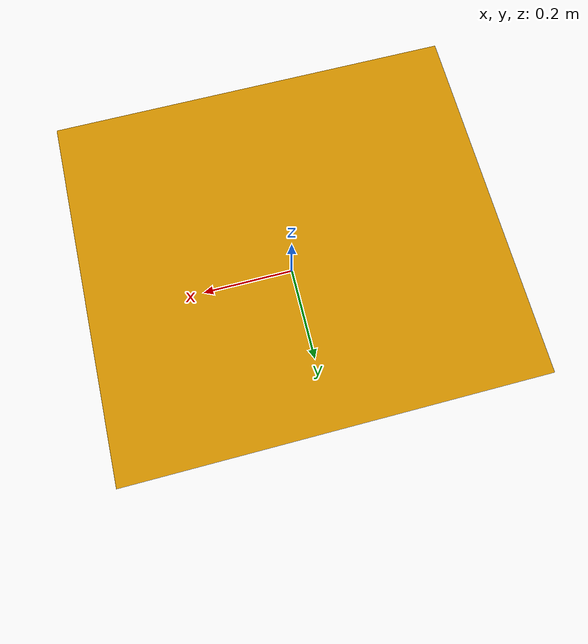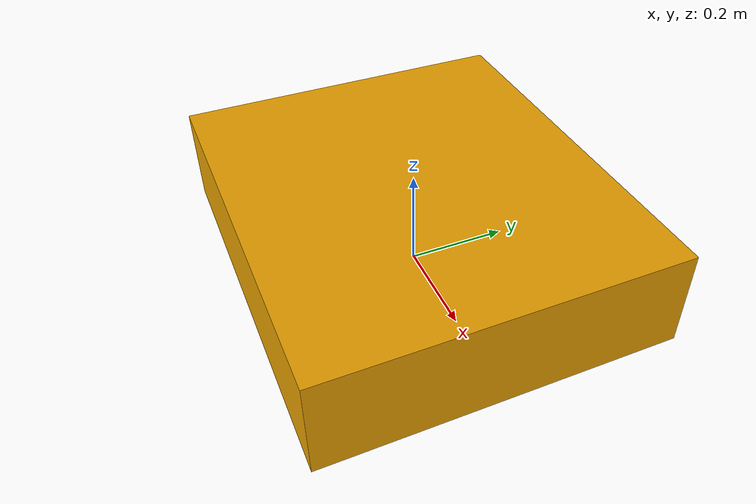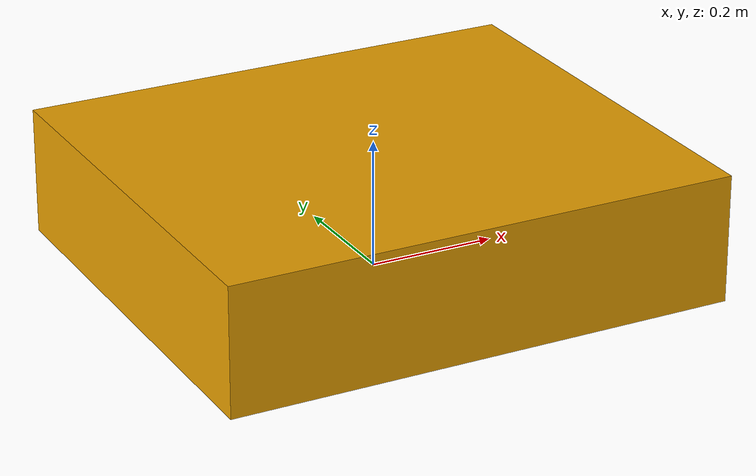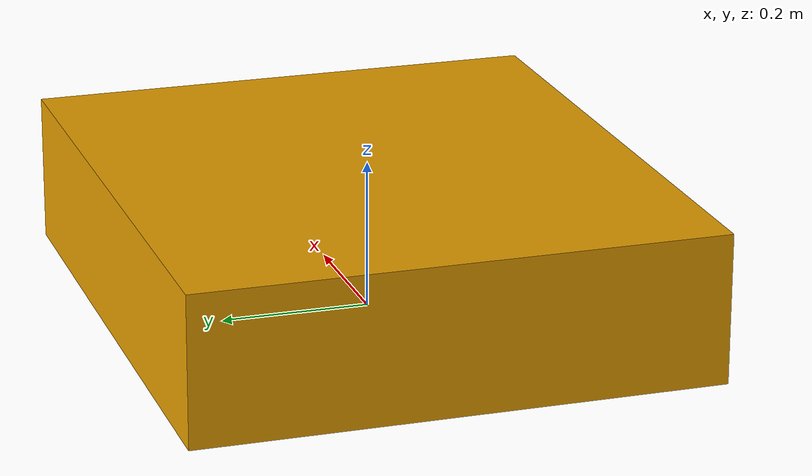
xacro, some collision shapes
<?xml version="1.0"?>
<robot name="rrl_tank" xmlns:xacro="http://www.ros.org/wiki/xacro">

  <material name="blue">
    <color rgba="0 0 0.8 1"/>
  </material>
  <material name="black">
    <color rgba="0 0 0 1"/>
  </material>
  <material name="white">
    <color rgba="1 1 1 1"/>
  </material>

  <link name="base_link">
    <inertial>
      <origin
        xyz="-0.0397613304580986 -0.00187447663786819 -0.0007976966428697"/>
      <mass value="10"/>
      <inertia
        ixx="0.280033582927332"
        ixy="-0.0109458890651764"
        ixz="-0.000139336718483203"
        iyy="0.441269583836676"
        iyz="9.2785508828341E-05"
        izz="0.185559829444659" />
    </inertial>
    <visual>
      <origin xyz="0 0 0.1" rpy="0 0 0"/>
      <geometry>
        <mesh filename="package://atr_rrl_description/meshes/tank/base_link.STL"/>
      </geometry>
    </visual>
    <collision>
      <origin xyz="0 0 0.1" rpy="0 0 0"/>
      <geometry>
        <box size="0.8 0.7 0.2"/>
      </geometry>
    </collision>
  </link>

  <link name="right_front_wheel">
    <inertial>
      <origin xyz="0 0 0" rpy="-${pi / 2} 0 0"/>
      <mass value="0.168011919570301" />
      <inertia
        ixx="0.000126799359132551"
        ixy="4.2180094748375E-11"
        ixz="-9.55801614785873E-11"
        iyy="0.000112956774131014"
        iyz="2.87100617773173E-09"
        izz="0.000112951688012628" />
    </inertial>
    <visual>
      <origin rpy="0 0 0" xyz="0 0 0"/>
      <geometry>
        <mesh filename="package://atr_rrl_description/meshes/tank/r_front_gear_link.STL"/>
      </geometry>
      <material name="black"/>
    </visual>
    <collision>
      <origin xyz="0 0 0" rpy="${pi / 2} 0 0" />
      <geometry>
        <cylinder length="0.05207" radius="0.052" />
      </geometry>
    </collision>
  </link>

  <joint name="base_to_right_front_wheel" type="continuous">
    <origin xyz="0 -0.30 0.05"/>
    <axis xyz="0 1 0"/>
    <limit effort="2000" velocity="100" />
    <parent link="base_link"/>
    <child link="right_front_wheel"/>
  </joint>

  <link name="left_front_wheel">
    <inertial>
      <origin xyz="0 0 0" rpy="-${pi / 2} 0 0"/>
      <mass value="0.168011919570301" />
      <inertia
        ixx="0.000126799359132551"
        ixy="5.10665558282939E-11"
        ixz="9.11932344797647E-11"
        iyy="0.000112956782528061"
        iyz="-2.875306538123E-09"
        izz="0.000112951677864508" />
    </inertial>
    <visual>
      <origin rpy="${pi} 0 0" xyz="0 0 0"/>
      <geometry>
        <mesh filename="package://atr_rrl_description/meshes/tank/l_front_gear_link.STL"/>
      </geometry>
      <material name="black"/>
    </visual>
    <collision>
      <origin xyz="0 0 0" rpy="${pi / 2} 0 0" />
      <geometry>
        <cylinder length="0.05207" radius="0.052" />
      </geometry>
    </collision>
  </link>

  <joint name="base_to_left_front_wheel" type="continuous">
    <origin xyz="0 0.30 0.05"/>
    <axis xyz="0 1 0"/>
    <limit effort="2000" velocity="100" />
    <parent link="base_link"/>
    <child link="left_front_wheel"/>
  </joint>

  <link name="right_rear_wheel">
    <inertial>
      <origin xyz="0 0 0" rpy="-${pi / 2} 0 0"/>
      <mass value="0.172189485487845" />
      <inertia
        ixx="0.000122934028959951"
        ixy="-9.69198780790459E-11"
        ixz="8.40716510084883E-11"
        iyy="0.000135229835441607"
        iyz="-3.35713405092348E-10"
        izz="0.000122926656061839" />
    </inertial>
    <visual>
      <origin rpy="-${pi / 2} 0 0" xyz="0 0.038 0"/>
      <geometry>
        <mesh filename="package://atr_rrl_description/meshes/tank/r_rear_gear_link.STL"/>
      </geometry>
      <material name="black"/>
    </visual>
    <collision>
      <origin xyz="0 0 0" rpy="${pi / 2} 0 0" />
      <geometry>
        <cylinder length="0.05207" radius="0.052" />
      </geometry>
    </collision>
  </link>

  <joint name="base_to_right_rear_wheel" type="continuous">
    <origin xyz="-0.30 -0.30 0.05"/>
    <axis xyz="0 1 0"/>
    <limit effort="2000" velocity="100" />
    <parent link="base_link"/>
    <child link="right_rear_wheel"/>
  </joint>

  <link name="left_rear_wheel">
    <inertial>
      <origin xyz="0 0 0" rpy="-${pi / 2} 0 0"/>
      <mass value="0.172189485243552" />
      <inertia
        ixx="0.000122934030023779"
        ixy="4.12976146803433E-10"
        ixz="-8.00350733438054E-10"
        iyy="0.000135229835425849"
        iyz="8.73155133668469E-12"
        izz="0.00012292611083972" />
    </inertial>
    <visual>
      <origin rpy="-${pi / 2} 0 0" xyz="0 -0.034 0"/>
      <geometry>
        <mesh filename="package://atr_rrl_description/meshes/tank/l_rear_gear_link.STL"/>
      </geometry>
      <material name="black"/>
    </visual>
    <collision>
      <origin xyz="0 0 0" rpy="${pi / 2} 0 0" />
      <geometry>
        <cylinder length="0.05207" radius="0.052" />
      </geometry>
    </collision>
  </link>

  <joint name="base_to_left_rear_wheel" type="continuous">
    <origin xyz="-0.30 0.30 0.05"/>
    <axis xyz="0 1 0"/>
    <limit effort="2000" velocity="100" />
    <parent link="base_link"/>
    <child link="left_rear_wheel"/>
  </joint>

  <gazebo>
    <plugin name="skid_steer_drive_controller" filename="libgazebo_ros_skid_steer_drive.so">
      <rosDebugLevel>na</rosDebugLevel>
      <updateRate>100.0</updateRate>
      <leftFrontJoint>base_to_left_front_wheel</leftFrontJoint>
      <rightFrontJoint>base_to_right_front_wheel</rightFrontJoint>
      <leftRearJoint>base_to_left_rear_wheel</leftRearJoint>
      <rightRearJoint>base_to_right_rear_wheel</rightRearJoint>
      <wheelSeparation>0.5207</wheelSeparation>
      <wheelDiameter>0.0762</wheelDiameter>
      <robotBaseFrame>base_link</robotBaseFrame>
      <torque>500</torque>
      <commandTopic>cmd_vel</commandTopic>
      <odometryTopic>odom</odometryTopic>
      <odometryFrame>odom</odometryFrame>
      <broadcastTF>true</broadcastTF>
    </plugin>
  </gazebo>

</robot>
